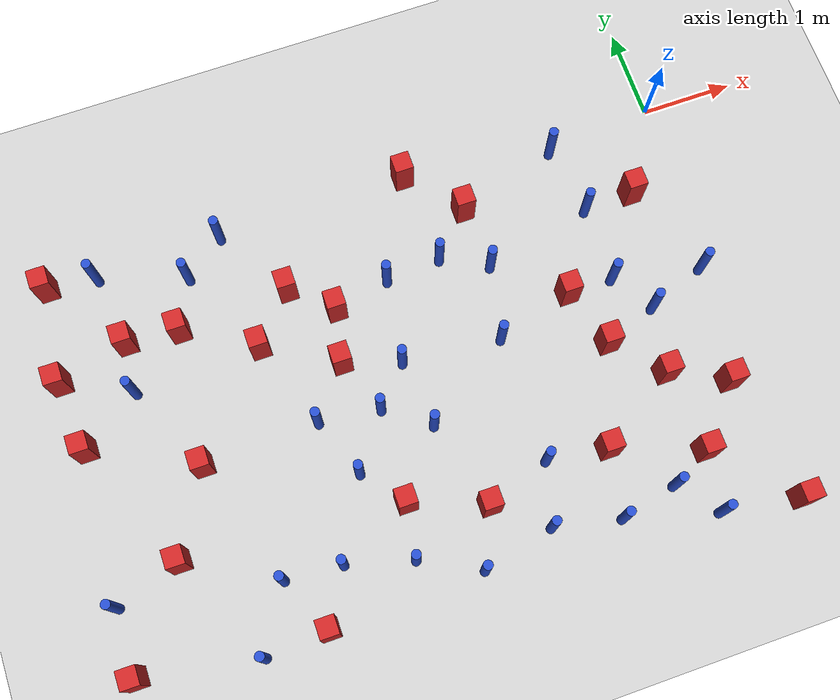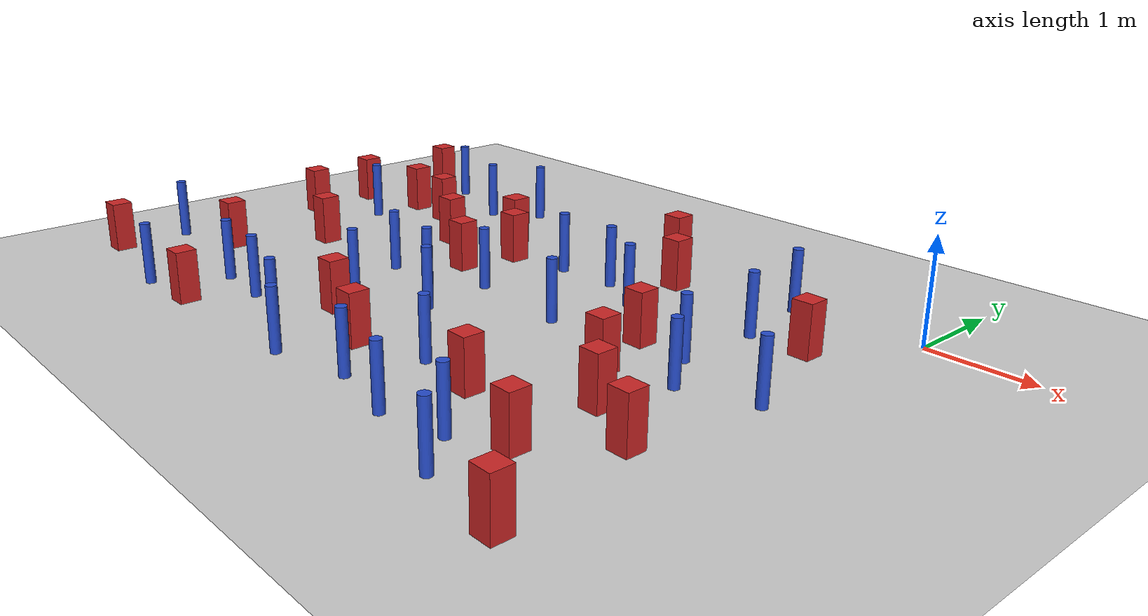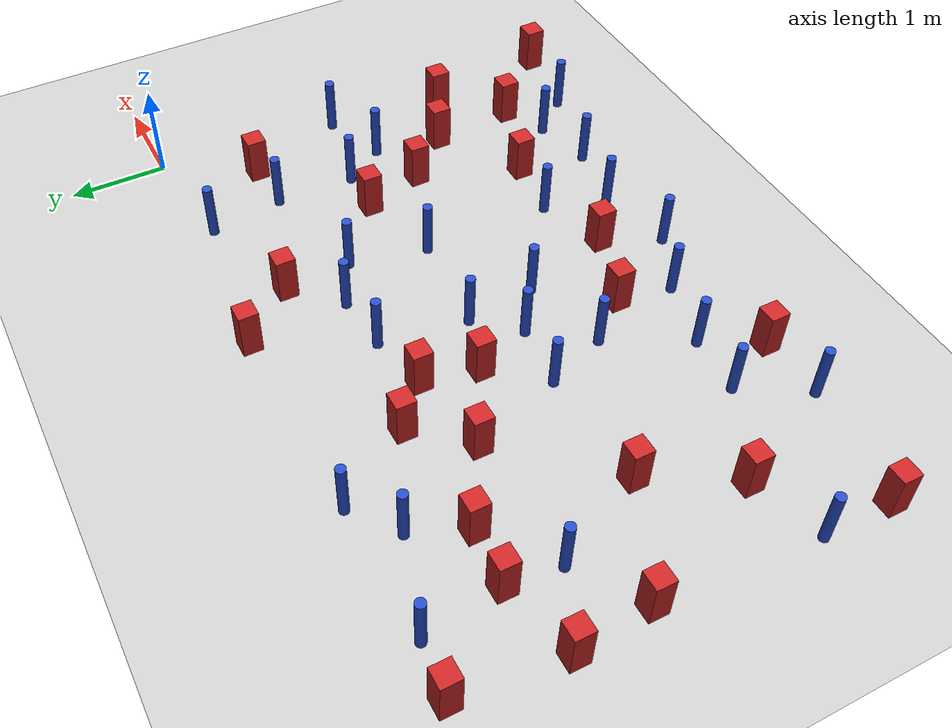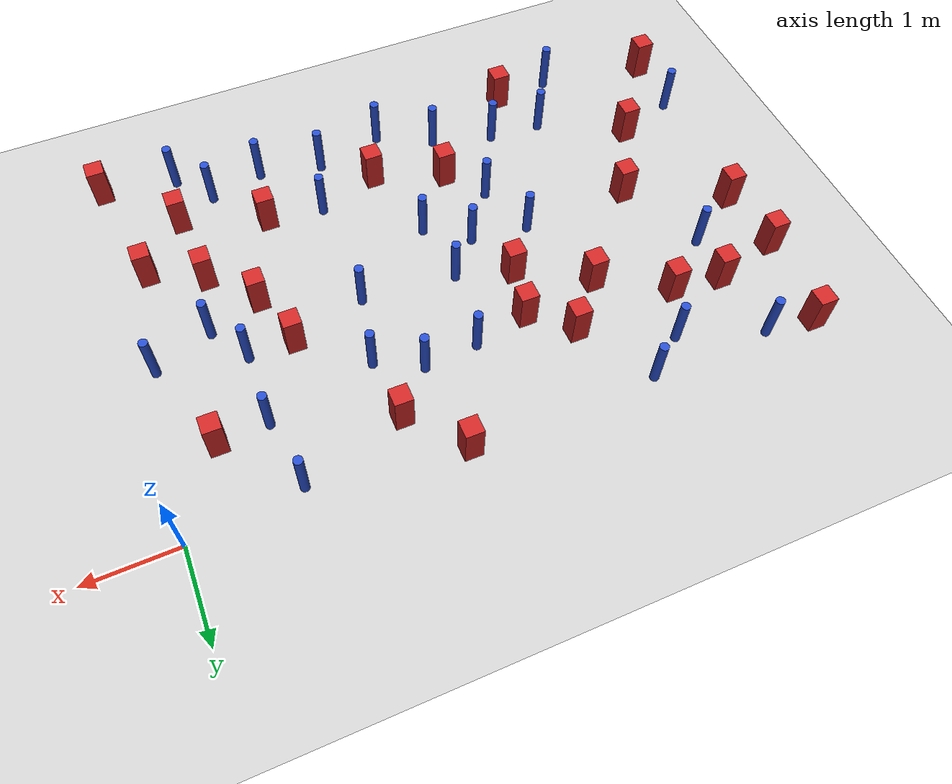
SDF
<sdf version="1.6">
 <world name="default">
  <model name="ground_plane">
   <static>1</static>
   <link name="link">
    <collision name="collision">
     <geometry><plane><normal>0 0 1</normal><size>100 100</size></plane></geometry>
     <surface><friction><ode><mu>100</mu><mu2>50</mu2></ode></friction></surface>
    </collision>
    <visual name="visual">
     <cast_shadows>0</cast_shadows>
     <geometry><plane><normal>0 0 1</normal><size>100 100</size></plane></geometry>
     <material>
      <ambient>1.0 1.0 1.0 1.0</ambient>
      <diffuse>0.8 0.8 0.8 1.0</diffuse>
      <specular>0.01 0.01 0.01 1.000000</specular>
     </material>
    </visual>
   </link>
  </model>
  <model name="square_post_obstacle0">
   <static>true</static>
   <pose>-2.84587844611 0.101750438623 8.22691968438e-08 7.2212513382e-06 -7.54495500217e-07 2.29674213826e-05</pose>
   <link name="link">
    <pose>0 0 0.25 0 -0 0</pose>
    <inertial>
     <mass>100</mass>
     <inertia>
      <ixx>0.166667</ixx>
      <ixy>0</ixy>
      <ixz>0</ixz>
      <iyy>0.166667</iyy>
      <iyz>0</iyz>
      <izz>0.166667</izz>
     </inertia>
    </inertial>
    <collision name="collision"><geometry><box><size>.2 .2 .5</size></box></geometry></collision>
    <visual name="visual">
     <geometry><box><size>.2 .2 .5</size></box></geometry>
     <material>
      <script><name>Gazebo/Red</name><uri>file://media/materials/scripts/gazebo.material</uri></script>
     </material>
    </visual>
   </link>
  </model>
  <model name="pole_obstacle5">
   <static>true</static>
   <pose>-2.66993275349 -4.00162867115 2.88873142074e-08 -9.90536690007e-09 4.60219948985e-07 -1.20965994963e-07</pose>
   <link name="link">
    <pose>0 0 0.3 0 -0 0</pose>
    <inertial>
     <mass>1</mass>
     <inertia><ixx>0.145833</ixx><ixy>0</ixy><ixz>0</ixz><iyy>0.145833</iyy><iyz>0</iyz><izz>0.125</izz></inertia>
    </inertial>
    <collision name="collision">
     <geometry><cylinder><radius>0.05</radius><length>.6</length></cylinder></geometry>
    </collision>
    <visual name="visual">
     <geometry><cylinder><radius>0.05</radius><length>.6</length></cylinder></geometry>
     <material>
      <script><name>Gazebo/Blue</name><uri>file://media/materials/scripts/gazebo.material</uri></script>
     </material>
    </visual>
   </link>
  </model>
  <model name="square_post_obstacle8">
   <static>true</static>
   <pose>-5.08097280859 -4.21850157625 8.22691968438e-08 7.2212513382e-06 -7.54495500217e-07 2.29674213826e-05</pose>
   <link name="link">
    <pose>0 0 0.25 0 -0 0</pose>
    <inertial>
     <mass>100</mass>
     <inertia>
      <ixx>0.166667</ixx>
      <ixy>0</ixy>
      <ixz>0</ixz>
      <iyy>0.166667</iyy>
      <iyz>0</iyz>
      <izz>0.166667</izz>
     </inertia>
    </inertial>
    <collision name="collision"><geometry><box><size>.2 .2 .5</size></box></geometry></collision>
    <visual name="visual">
     <geometry><box><size>.2 .2 .5</size></box></geometry>
     <material>
      <script><name>Gazebo/Red</name><uri>file://media/materials/scripts/gazebo.material</uri></script>
     </material>
    </visual>
   </link>
  </model>
  <model name="pole_obstacle7">
   <static>true</static>
   <pose>-3.89535260939 -2.29034658619 2.88873142074e-08 -9.90536690232e-09 4.6021994898e-07 -1.20965994968e-07</pose>
   <link name="link">
    <pose>0 0 0.3 0 -0 0</pose>
    <inertial>
     <mass>1</mass>
     <inertia><ixx>0.145833</ixx><ixy>0</ixy><ixz>0</ixz><iyy>0.145833</iyy><iyz>0</iyz><izz>0.125</izz></inertia>
    </inertial>
    <collision name="collision">
     <geometry><cylinder><radius>0.05</radius><length>.6</length></cylinder></geometry>
    </collision>
    <visual name="visual">
     <geometry><cylinder><radius>0.05</radius><length>.6</length></cylinder></geometry>
     <material>
      <script><name>Gazebo/Blue</name><uri>file://media/materials/scripts/gazebo.material</uri></script>
     </material>
    </visual>
   </link>
  </model>
  <model name="square_post_obstacle17">
   <static>true</static>
   <pose>-5.79297355049 -2.24923359172 8.22691968438e-08 7.2212513382e-06 -7.54495500217e-07 2.29674213826e-05</pose>
   <link name="link">
    <pose>0 0 0.25 0 -0 0</pose>
    <inertial>
     <mass>100</mass>
     <inertia>
      <ixx>0.166667</ixx>
      <ixy>0</ixy>
      <ixz>0</ixz>
      <iyy>0.166667</iyy>
      <iyz>0</iyz>
      <izz>0.166667</izz>
     </inertia>
    </inertial>
    <collision name="collision"><geometry><box><size>.2 .2 .5</size></box></geometry></collision>
    <visual name="visual">
     <geometry><box><size>.2 .2 .5</size></box></geometry>
     <material>
      <script><name>Gazebo/Red</name><uri>file://media/materials/scripts/gazebo.material</uri></script>
     </material>
    </visual>
   </link>
  </model>
  <model name="pole_obstacle10">
   <static>true</static>
   <pose>-1.00639207774 -4.41292333605 2.88873142074e-08 -9.90536689792e-09 4.6021994899e-07 -1.2096599496e-07</pose>
   <link name="link">
    <pose>0 0 0.3 0 -0 0</pose>
    <inertial>
     <mass>1</mass>
     <inertia><ixx>0.145833</ixx><ixy>0</ixy><ixz>0</ixz><iyy>0.145833</iyy><iyz>0</iyz><izz>0.125</izz></inertia>
    </inertial>
    <collision name="collision">
     <geometry><cylinder><radius>0.05</radius><length>.6</length></cylinder></geometry>
    </collision>
    <visual name="visual">
     <geometry><cylinder><radius>0.05</radius><length>.6</length></cylinder></geometry>
     <material>
      <script><name>Gazebo/Blue</name><uri>file://media/materials/scripts/gazebo.material</uri></script>
     </material>
    </visual>
   </link>
  </model>
  <model name="square_post_obstacle19">
   <static>true</static>
   <pose>-4.88050866906 -1.23946027263 8.22691968438e-08 7.2212513382e-06 -7.54495500217e-07 2.29674213826e-05</pose>
   <link name="link">
    <pose>0 0 0.25 0 -0 0</pose>
    <inertial>
     <mass>100</mass>
     <inertia>
      <ixx>0.166667</ixx>
      <ixy>0</ixy>
      <ixz>0</ixz>
      <iyy>0.166667</iyy>
      <iyz>0</iyz>
      <izz>0.166667</izz>
     </inertia>
    </inertial>
    <collision name="collision"><geometry><box><size>.2 .2 .5</size></box></geometry></collision>
    <visual name="visual">
     <geometry><box><size>.2 .2 .5</size></box></geometry>
     <material>
      <script><name>Gazebo/Red</name><uri>file://media/materials/scripts/gazebo.material</uri></script>
     </material>
    </visual>
   </link>
  </model>
  <model name="square_post_obstacle24">
   <static>true</static>
   <pose>-3.17812976297 -3.57739050062 8.22691968438e-08 7.2212513382e-06 -7.54495500217e-07 2.29674213826e-05</pose>
   <link name="link">
    <pose>0 0 0.25 0 -0 0</pose>
    <inertial>
     <mass>100</mass>
     <inertia>
      <ixx>0.166667</ixx>
      <ixy>0</ixy>
      <ixz>0</ixz>
      <iyy>0.166667</iyy>
      <iyz>0</iyz>
      <izz>0.166667</izz>
     </inertia>
    </inertial>
    <collision name="collision"><geometry><box><size>.2 .2 .5</size></box></geometry></collision>
    <visual name="visual">
     <geometry><box><size>.2 .2 .5</size></box></geometry>
     <material>
      <script><name>Gazebo/Red</name><uri>file://media/materials/scripts/gazebo.material</uri></script>
     </material>
    </visual>
   </link>
  </model>
  <model name="pole_obstacle19">
   <static>true</static>
   <pose>-6.98913396444 -3.3410348965 2.88873142074e-08 -9.90536690245e-09 4.6021994898e-07 -1.20965994966e-07</pose>
   <link name="link">
    <pose>0 0 0.3 0 -0 0</pose>
    <inertial>
     <mass>1</mass>
     <inertia><ixx>0.145833</ixx><ixy>0</ixy><ixz>0</ixz><iyy>0.145833</iyy><iyz>0</iyz><izz>0.125</izz></inertia>
    </inertial>
    <collision name="collision">
     <geometry><cylinder><radius>0.05</radius><length>.6</length></cylinder></geometry>
    </collision>
    <visual name="visual">
     <geometry><cylinder><radius>0.05</radius><length>.6</length></cylinder></geometry>
     <material>
      <script><name>Gazebo/Blue</name><uri>file://media/materials/scripts/gazebo.material</uri></script>
     </material>
    </visual>
   </link>
  </model>
  <model name="pole_obstacle21">
   <static>true</static>
   <pose>-5.37258440158 -0.266181176572 2.88873142074e-08 -9.9053668927e-09 4.60219949003e-07 -1.20965994954e-07</pose>
   <link name="link">
    <pose>0 0 0.3 0 -0 0</pose>
    <inertial>
     <mass>1</mass>
     <inertia><ixx>0.145833</ixx><ixy>0</ixy><ixz>0</ixz><iyy>0.145833</iyy><iyz>0</iyz><izz>0.125</izz></inertia>
    </inertial>
    <collision name="collision">
     <geometry><cylinder><radius>0.05</radius><length>.6</length></cylinder></geometry>
    </collision>
    <visual name="visual">
     <geometry><cylinder><radius>0.05</radius><length>.6</length></cylinder></geometry>
     <material>
      <script><name>Gazebo/Blue</name><uri>file://media/materials/scripts/gazebo.material</uri></script>
     </material>
    </visual>
   </link>
  </model>
  <model name="pole_obstacle29">
   <static>true</static>
   <pose>-3.38603073049 -0.976342570758 2.88873142074e-08 -9.90536687665e-09 4.60219949039e-07 -1.20965994942e-07</pose>
   <link name="link">
    <pose>0 0 0.3 0 -0 0</pose>
    <inertial>
     <mass>1</mass>
     <inertia><ixx>0.145833</ixx><ixy>0</ixy><ixz>0</ixz><iyy>0.145833</iyy><iyz>0</iyz><izz>0.125</izz></inertia>
    </inertial>
    <collision name="collision">
     <geometry><cylinder><radius>0.05</radius><length>.6</length></cylinder></geometry>
    </collision>
    <visual name="visual">
     <geometry><cylinder><radius>0.05</radius><length>.6</length></cylinder></geometry>
     <material>
      <script><name>Gazebo/Blue</name><uri>file://media/materials/scripts/gazebo.material</uri></script>
     </material>
    </visual>
   </link>
  </model>
  <model name="pole_obstacle34">
   <static>true</static>
   <pose>-4.05886031066 -3.86255129519 2.88873142074e-08 -9.90536690245e-09 4.6021994898e-07 -1.20965994966e-07</pose>
   <link name="link">
    <pose>0 0 0.3 0 -0 0</pose>
    <inertial>
     <mass>1</mass>
     <inertia><ixx>0.145833</ixx><ixy>0</ixy><ixz>0</ixz><iyy>0.145833</iyy><iyz>0</iyz><izz>0.125</izz></inertia>
    </inertial>
    <collision name="collision">
     <geometry><cylinder><radius>0.05</radius><length>.6</length></cylinder></geometry>
    </collision>
    <visual name="visual">
     <geometry><cylinder><radius>0.05</radius><length>.6</length></cylinder></geometry>
     <material>
      <script><name>Gazebo/Blue</name><uri>file://media/materials/scripts/gazebo.material</uri></script>
     </material>
    </visual>
   </link>
  </model>
  <model name="square_post_obstacle38">
   <static>true</static>
   <pose>-5.62168079201 -0.792575105588 8.22691968438e-08 7.2212513382e-06 -7.54495500217e-07 2.29674213826e-05</pose>
   <link name="link">
    <pose>0 0 0.25 0 -0 0</pose>
    <inertial>
     <mass>100</mass>
     <inertia>
      <ixx>0.166667</ixx>
      <ixy>0</ixy>
      <ixz>0</ixz>
      <iyy>0.166667</iyy>
      <iyz>0</iyz>
      <izz>0.166667</izz>
     </inertia>
    </inertial>
    <collision name="collision"><geometry><box><size>.2 .2 .5</size></box></geometry></collision>
    <visual name="visual">
     <geometry><box><size>.2 .2 .5</size></box></geometry>
     <material>
      <script><name>Gazebo/Red</name><uri>file://media/materials/scripts/gazebo.material</uri></script>
     </material>
    </visual>
   </link>
  </model>
  <model name="pole_obstacle42">
   <static>true</static>
   <pose>-2.46496689117 -1.98006889055 2.88873142074e-08 -9.90536689589e-09 4.60219948995e-07 -1.20965994957e-07</pose>
   <link name="link">
    <pose>0 0 0.3 0 -0 0</pose>
    <inertial>
     <mass>1</mass>
     <inertia><ixx>0.145833</ixx><ixy>0</ixy><ixz>0</ixz><iyy>0.145833</iyy><iyz>0</iyz><izz>0.125</izz></inertia>
    </inertial>
    <collision name="collision">
     <geometry><cylinder><radius>0.05</radius><length>.6</length></cylinder></geometry>
    </collision>
    <visual name="visual">
     <geometry><cylinder><radius>0.05</radius><length>.6</length></cylinder></geometry>
     <material>
      <script><name>Gazebo/Blue</name><uri>file://media/materials/scripts/gazebo.material</uri></script>
     </material>
    </visual>
   </link>
  </model>
  <model name="square_post_obstacle51">
   <static>true</static>
   <pose>-6.99228711313 -4.04863941483 8.22691968438e-08 7.22125133819e-06 -7.54495500217e-07 2.29674213826e-05</pose>
   <link name="link">
    <pose>0 0 0.25 0 -0 0</pose>
    <inertial>
     <mass>100</mass>
     <inertia>
      <ixx>0.166667</ixx>
      <ixy>0</ixy>
      <ixz>0</ixz>
      <iyy>0.166667</iyy>
      <iyz>0</iyz>
      <izz>0.166667</izz>
     </inertia>
    </inertial>
    <collision name="collision"><geometry><box><size>.2 .2 .5</size></box></geometry></collision>
    <visual name="visual">
     <geometry><box><size>.2 .2 .5</size></box></geometry>
     <material>
      <script><name>Gazebo/Red</name><uri>file://media/materials/scripts/gazebo.material</uri></script>
     </material>
    </visual>
   </link>
  </model>
  <model name="square_post_obstacle55">
   <static>true</static>
   <pose>-2.34799162989 -0.472409495183 8.22691968438e-08 7.2212513382e-06 -7.54495500217e-07 2.29674213826e-05</pose>
   <link name="link">
    <pose>0 0 0.25 0 -0 0</pose>
    <inertial>
     <mass>100</mass>
     <inertia>
      <ixx>0.166667</ixx>
      <ixy>0</ixy>
      <ixz>0</ixz>
      <iyy>0.166667</iyy>
      <iyz>0</iyz>
      <izz>0.166667</izz>
     </inertia>
    </inertial>
    <collision name="collision"><geometry><box><size>.2 .2 .5</size></box></geometry></collision>
    <visual name="visual">
     <geometry><box><size>.2 .2 .5</size></box></geometry>
     <material>
      <script><name>Gazebo/Red</name><uri>file://media/materials/scripts/gazebo.material</uri></script>
     </material>
    </visual>
   </link>
  </model>
  <model name="pole_obstacle54">
   <static>true</static>
   <pose>-1.1235914089 -1.74053471582 2.88873142074e-08 -9.90536689672e-09 4.60219948993e-07 -1.20965994959e-07</pose>
   <link name="link">
    <pose>0 0 0.3 0 -0 0</pose>
    <inertial>
     <mass>1</mass>
     <inertia><ixx>0.145833</ixx><ixy>0</ixy><ixz>0</ixz><iyy>0.145833</iyy><iyz>0</iyz><izz>0.125</izz></inertia>
    </inertial>
    <collision name="collision">
     <geometry><cylinder><radius>0.05</radius><length>.6</length></cylinder></geometry>
    </collision>
    <visual name="visual">
     <geometry><cylinder><radius>0.05</radius><length>.6</length></cylinder></geometry>
     <material>
      <script><name>Gazebo/Blue</name><uri>file://media/materials/scripts/gazebo.material</uri></script>
     </material>
    </visual>
   </link>
  </model>
  <model name="square_post_obstacle58">
   <static>true</static>
   <pose>-1.83741293282 -3.42551823538 8.22691968438e-08 7.2212513382e-06 -7.54495500217e-07 2.29674213826e-05</pose>
   <link name="link">
    <pose>0 0 0.25 0 -0 0</pose>
    <inertial>
     <mass>100</mass>
     <inertia>
      <ixx>0.166667</ixx>
      <ixy>0</ixy>
      <ixz>0</ixz>
      <iyy>0.166667</iyy>
      <iyz>0</iyz>
      <izz>0.166667</izz>
     </inertia>
    </inertial>
    <collision name="collision"><geometry><box><size>.2 .2 .5</size></box></geometry></collision>
    <visual name="visual">
     <geometry><box><size>.2 .2 .5</size></box></geometry>
     <material>
      <script><name>Gazebo/Red</name><uri>file://media/materials/scripts/gazebo.material</uri></script>
     </material>
    </visual>
   </link>
  </model>
  <model name="square_post_obstacle65">
   <static>true</static>
   <pose>-4.42170971 -0.727729598362 8.22691968438e-08 7.2212513382e-06 -7.54495500217e-07 2.29674213826e-05</pose>
   <link name="link">
    <pose>0 0 0.25 0 -0 0</pose>
    <inertial>
     <mass>100</mass>
     <inertia>
      <ixx>0.166667</ixx>
      <ixy>0</ixy>
      <ixz>0</ixz>
      <iyy>0.166667</iyy>
      <iyz>0</iyz>
      <izz>0.166667</izz>
     </inertia>
    </inertial>
    <collision name="collision"><geometry><box><size>.2 .2 .5</size></box></geometry></collision>
    <visual name="visual">
     <geometry><box><size>.2 .2 .5</size></box></geometry>
     <material>
      <script><name>Gazebo/Red</name><uri>file://media/materials/scripts/gazebo.material</uri></script>
     </material>
    </visual>
   </link>
  </model>
  <model name="pole_obstacle86">
   <static>true</static>
   <pose>-6.24264509138 -1.29145536053 2.88873142074e-08 -9.90536689445e-09 4.60219948999e-07 -1.20965994956e-07</pose>
   <link name="link">
    <pose>0 0 0.3 0 -0 0</pose>
    <inertial>
     <mass>1</mass>
     <inertia><ixx>0.145833</ixx><ixy>0</ixy><ixz>0</ixz><iyy>0.145833</iyy><iyz>0</iyz><izz>0.125</izz></inertia>
    </inertial>
    <collision name="collision">
     <geometry><cylinder><radius>0.05</radius><length>.6</length></cylinder></geometry>
    </collision>
    <visual name="visual">
     <geometry><cylinder><radius>0.05</radius><length>.6</length></cylinder></geometry>
     <material>
      <script><name>Gazebo/Blue</name><uri>file://media/materials/scripts/gazebo.material</uri></script>
     </material>
    </visual>
   </link>
  </model>
  <model name="pole_obstacle88">
   <static>true</static>
   <pose>-3.43593170437 -2.62619215571 2.88873142074e-08 -9.90536690232e-09 4.6021994898e-07 -1.20965994968e-07</pose>
   <link name="link">
    <pose>0 0 0.3 0 -0 0</pose>
    <inertial>
     <mass>1</mass>
     <inertia><ixx>0.145833</ixx><ixy>0</ixy><ixz>0</ixz><iyy>0.145833</iyy><iyz>0</iyz><izz>0.125</izz></inertia>
    </inertial>
    <collision name="collision">
     <geometry><cylinder><radius>0.05</radius><length>.6</length></cylinder></geometry>
    </collision>
    <visual name="visual">
     <geometry><cylinder><radius>0.05</radius><length>.6</length></cylinder></geometry>
     <material>
      <script><name>Gazebo/Blue</name><uri>file://media/materials/scripts/gazebo.material</uri></script>
     </material>
    </visual>
   </link>
  </model>
  <model name="pole_obstacle95">
   <static>true</static>
   <pose>-6.2966273753 0.0435318729387 2.88873142074e-08 -9.90536689361e-09 4.60219949001e-07 -1.20965994955e-07</pose>
   <link name="link">
    <pose>0 0 0.3 0 -0 0</pose>
    <inertial>
     <mass>1</mass>
     <inertia><ixx>0.145833</ixx><ixy>0</ixy><ixz>0</ixz><iyy>0.145833</iyy><iyz>0</iyz><izz>0.125</izz></inertia>
    </inertial>
    <collision name="collision">
     <geometry><cylinder><radius>0.05</radius><length>.6</length></cylinder></geometry>
    </collision>
    <visual name="visual">
     <geometry><cylinder><radius>0.05</radius><length>.6</length></cylinder></geometry>
     <material>
      <script><name>Gazebo/Blue</name><uri>file://media/materials/scripts/gazebo.material</uri></script>
     </material>
    </visual>
   </link>
  </model>
  <model name="square_post_obstacle86">
   <static>true</static>
   <pose>-6.94916123792 -0.940429647604 8.22691968438e-08 7.22125133819e-06 -7.54495500217e-07 2.29674213826e-05</pose>
   <link name="link">
    <pose>0 0 0.25 0 -0 0</pose>
    <inertial>
     <mass>100</mass>
     <inertia>
      <ixx>0.166667</ixx>
      <ixy>0</ixy>
      <ixz>0</ixz>
      <iyy>0.166667</iyy>
      <iyz>0</iyz>
      <izz>0.166667</izz>
     </inertia>
    </inertial>
    <collision name="collision"><geometry><box><size>.2 .2 .5</size></box></geometry></collision>
    <visual name="visual">
     <geometry><box><size>.2 .2 .5</size></box></geometry>
     <material>
      <script><name>Gazebo/Red</name><uri>file://media/materials/scripts/gazebo.material</uri></script>
     </material>
    </visual>
   </link>
  </model>
  <model name="square_post_obstacle91">
   <static>true</static>
   <pose>-0.38873989778 -3.1671405557 8.22691968438e-08 7.2212513382e-06 -7.54495500217e-07 2.29674213826e-05</pose>
   <link name="link">
    <pose>0 0 0.25 0 -0 0</pose>
    <inertial>
     <mass>100</mass>
     <inertia>
      <ixx>0.166667</ixx>
      <ixy>0</ixy>
      <ixz>0</ixz>
      <iyy>0.166667</iyy>
      <iyz>0</iyz>
      <izz>0.166667</izz>
     </inertia>
    </inertial>
    <collision name="collision"><geometry><box><size>.2 .2 .5</size></box></geometry></collision>
    <visual name="visual">
     <geometry><box><size>.2 .2 .5</size></box></geometry>
     <material>
      <script><name>Gazebo/Red</name><uri>file://media/materials/scripts/gazebo.material</uri></script>
     </material>
    </visual>
   </link>
  </model>
  <model name="pole_obstacle107">
   <static>true</static>
   <pose>-1.2170728881 -0.140132219002 2.88873142074e-08 -9.90536689982e-09 4.60219948986e-07 -1.20965994963e-07</pose>
   <link name="link">
    <pose>0 0 0.3 0 -0 0</pose>
    <inertial>
     <mass>1</mass>
     <inertia><ixx>0.145833</ixx><ixy>0</ixy><ixz>0</ixz><iyy>0.145833</iyy><iyz>0</iyz><izz>0.125</izz></inertia>
    </inertial>
    <collision name="collision">
     <geometry><cylinder><radius>0.05</radius><length>.6</length></cylinder></geometry>
    </collision>
    <visual name="visual">
     <geometry><cylinder><radius>0.05</radius><length>.6</length></cylinder></geometry>
     <material>
      <script><name>Gazebo/Blue</name><uri>file://media/materials/scripts/gazebo.material</uri></script>
     </material>
    </visual>
   </link>
  </model>
  <model name="pole_obstacle110">
   <static>true</static>
   <pose>-0.185197007833 -1.93534676744 2.88873142074e-08 -9.90536689666e-09 4.60219948993e-07 -1.20965994958e-07</pose>
   <link name="link">
    <pose>0 0 0.3 0 -0 0</pose>
    <inertial>
     <mass>1</mass>
     <inertia><ixx>0.145833</ixx><ixy>0</ixy><ixz>0</ixz><iyy>0.145833</iyy><iyz>0</iyz><izz>0.125</izz></inertia>
    </inertial>
    <collision name="collision">
     <geometry><cylinder><radius>0.05</radius><length>.6</length></cylinder></geometry>
    </collision>
    <visual name="visual">
     <geometry><cylinder><radius>0.05</radius><length>.6</length></cylinder></geometry>
     <material>
      <script><name>Gazebo/Blue</name><uri>file://media/materials/scripts/gazebo.material</uri></script>
     </material>
    </visual>
   </link>
  </model>
  <model name="pole_obstacle115">
   <static>true</static>
   <pose>-2.47929947515 -3.34834220231 2.88873142074e-08 -9.90536690232e-09 4.6021994898e-07 -1.20965994968e-07</pose>
   <link name="link">
    <pose>0 0 0.3 0 -0 0</pose>
    <inertial>
     <mass>1</mass>
     <inertia><ixx>0.145833</ixx><ixy>0</ixy><ixz>0</ixz><iyy>0.145833</iyy><iyz>0</iyz><izz>0.125</izz></inertia>
    </inertial>
    <collision name="collision">
     <geometry><cylinder><radius>0.05</radius><length>.6</length></cylinder></geometry>
    </collision>
    <visual name="visual">
     <geometry><cylinder><radius>0.05</radius><length>.6</length></cylinder></geometry>
     <material>
      <script><name>Gazebo/Blue</name><uri>file://media/materials/scripts/gazebo.material</uri></script>
     </material>
    </visual>
   </link>
  </model>
  <model name="pole_obstacle116">
   <static>true</static>
   <pose>-4.92797380079 0.072935126343 2.88873142074e-08 -9.90536689222e-09 4.60219949004e-07 -1.20965994951e-07</pose>
   <link name="link">
    <pose>0 0 0.3 0 -0 0</pose>
    <inertial>
     <mass>1</mass>
     <inertia><ixx>0.145833</ixx><ixy>0</ixy><ixz>0</ixz><iyy>0.145833</iyy><iyz>0</iyz><izz>0.125</izz></inertia>
    </inertial>
    <collision name="collision">
     <geometry><cylinder><radius>0.05</radius><length>.6</length></cylinder></geometry>
    </collision>
    <visual name="visual">
     <geometry><cylinder><radius>0.05</radius><length>.6</length></cylinder></geometry>
     <material>
      <script><name>Gazebo/Blue</name><uri>file://media/materials/scripts/gazebo.material</uri></script>
     </material>
    </visual>
   </link>
  </model>
  <model name="pole_obstacle118">
   <static>true</static>
   <pose>-5.75203755778 -4.27469598799 2.88873142074e-08 -9.90536690842e-09 4.60219948965e-07 -1.20965994976e-07</pose>
   <link name="link">
    <pose>0 0 0.3 0 -0 0</pose>
    <inertial>
     <mass>1</mass>
     <inertia><ixx>0.145833</ixx><ixy>0</ixy><ixz>0</ixz><iyy>0.145833</iyy><iyz>0</iyz><izz>0.125</izz></inertia>
    </inertial>
    <collision name="collision">
     <geometry><cylinder><radius>0.05</radius><length>.6</length></cylinder></geometry>
    </collision>
    <visual name="visual">
     <geometry><cylinder><radius>0.05</radius><length>.6</length></cylinder></geometry>
     <material>
      <script><name>Gazebo/Blue</name><uri>file://media/materials/scripts/gazebo.material</uri></script>
     </material>
    </visual>
   </link>
  </model>
  <model name="square_post_obstacle105">
   <static>true</static>
   <pose>-1.42601222404 -2.37801932961 8.22691968438e-08 7.2212513382e-06 -7.54495500217e-07 2.29674213826e-05</pose>
   <link name="link">
    <pose>0 0 0.25 0 -0 0</pose>
    <inertial>
     <mass>100</mass>
     <inertia>
      <ixx>0.166667</ixx>
      <ixy>0</ixy>
      <ixz>0</ixz>
      <iyy>0.166667</iyy>
      <iyz>0</iyz>
      <izz>0.166667</izz>
     </inertia>
    </inertial>
    <collision name="collision"><geometry><box><size>.2 .2 .5</size></box></geometry></collision>
    <visual name="visual">
     <geometry><box><size>.2 .2 .5</size></box></geometry>
     <material>
      <script><name>Gazebo/Red</name><uri>file://media/materials/scripts/gazebo.material</uri></script>
     </material>
    </visual>
   </link>
  </model>
  <model name="square_post_obstacle108">
   <static>true</static>
   <pose>-3.99846314801 -1.10713414687 8.22691968438e-08 7.2212513382e-06 -7.54495500217e-07 2.29674213826e-05</pose>
   <link name="link">
    <pose>0 0 0.25 0 -0 0</pose>
    <inertial>
     <mass>100</mass>
     <inertia>
      <ixx>0.166667</ixx>
      <ixy>0</ixy>
      <ixz>0</ixz>
      <iyy>0.166667</iyy>
      <iyz>0</iyz>
      <izz>0.166667</izz>
     </inertia>
    </inertial>
    <collision name="collision"><geometry><box><size>.2 .2 .5</size></box></geometry></collision>
    <visual name="visual">
     <geometry><box><size>.2 .2 .5</size></box></geometry>
     <material>
      <script><name>Gazebo/Red</name><uri>file://media/materials/scripts/gazebo.material</uri></script>
     </material>
    </visual>
   </link>
  </model>
  <model name="pole_obstacle125">
   <static>true</static>
   <pose>-1.10225082935 -0.913636569275 2.88873142074e-08 -9.90536689692e-09 4.60219948993e-07 -1.20965994958e-07</pose>
   <link name="link">
    <pose>0 0 0.3 0 -0 0</pose>
    <inertial>
     <mass>1</mass>
     <inertia><ixx>0.145833</ixx><ixy>0</ixy><ixz>0</ixz><iyy>0.145833</iyy><iyz>0</iyz><izz>0.125</izz></inertia>
    </inertial>
    <collision name="collision">
     <geometry><cylinder><radius>0.05</radius><length>.6</length></cylinder></geometry>
    </collision>
    <visual name="visual">
     <geometry><cylinder><radius>0.05</radius><length>.6</length></cylinder></geometry>
     <material>
      <script><name>Gazebo/Blue</name><uri>file://media/materials/scripts/gazebo.material</uri></script>
     </material>
    </visual>
   </link>
  </model>
  <model name="pole_obstacle128">
   <static>true</static>
   <pose>-2.2928692425 -1.18259276771 2.88873142074e-08 -9.90536689395e-09 4.60219949e-07 -1.20965994953e-07</pose>
   <link name="link">
    <pose>0 0 0.3 0 -0 0</pose>
    <inertial>
     <mass>1</mass>
     <inertia><ixx>0.145833</ixx><ixy>0</ixy><ixz>0</ixz><iyy>0.145833</iyy><iyz>0</iyz><izz>0.125</izz></inertia>
    </inertial>
    <collision name="collision">
     <geometry><cylinder><radius>0.05</radius><length>.6</length></cylinder></geometry>
    </collision>
    <visual name="visual">
     <geometry><cylinder><radius>0.05</radius><length>.6</length></cylinder></geometry>
     <material>
      <script><name>Gazebo/Blue</name><uri>file://media/materials/scripts/gazebo.material</uri></script>
     </material>
    </visual>
   </link>
  </model>
  <model name="pole_obstacle129">
   <static>true</static>
   <pose>-4.31286075977 -2.85340501641 2.88873142074e-08 -9.90536690245e-09 4.6021994898e-07 -1.20965994966e-07</pose>
   <link name="link">
    <pose>0 0 0.3 0 -0 0</pose>
    <inertial>
     <mass>1</mass>
     <inertia><ixx>0.145833</ixx><ixy>0</ixy><ixz>0</ixz><iyy>0.145833</iyy><iyz>0</iyz><izz>0.125</izz></inertia>
    </inertial>
    <collision name="collision">
     <geometry><cylinder><radius>0.05</radius><length>.6</length></cylinder></geometry>
    </collision>
    <visual name="visual">
     <geometry><cylinder><radius>0.05</radius><length>.6</length></cylinder></geometry>
     <material>
      <script><name>Gazebo/Blue</name><uri>file://media/materials/scripts/gazebo.material</uri></script>
     </material>
    </visual>
   </link>
  </model>
  <model name="pole_obstacle132">
   <static>true</static>
   <pose>-2.78127785963 -0.928568165394 2.88873142074e-08 -9.90536689285e-09 4.60219949002e-07 -1.20965994953e-07</pose>
   <link name="link">
    <pose>0 0 0.3 0 -0 0</pose>
    <inertial>
     <mass>1</mass>
     <inertia><ixx>0.145833</ixx><ixy>0</ixy><ixz>0</ixz><iyy>0.145833</iyy><iyz>0</iyz><izz>0.125</izz></inertia>
    </inertial>
    <collision name="collision">
     <geometry><cylinder><radius>0.05</radius><length>.6</length></cylinder></geometry>
    </collision>
    <visual name="visual">
     <geometry><cylinder><radius>0.05</radius><length>.6</length></cylinder></geometry>
     <material>
      <script><name>Gazebo/Blue</name><uri>file://media/materials/scripts/gazebo.material</uri></script>
     </material>
    </visual>
   </link>
  </model>
  <model name="square_post_obstacle117">
   <static>true</static>
   <pose>-0.56029920951 -0.883520880099 8.22691968438e-08 7.2212513382e-06 -7.54495500217e-07 2.29674213826e-05</pose>
   <link name="link">
    <pose>0 0 0.25 0 -0 0</pose>
    <inertial>
     <mass>100</mass>
     <inertia>
      <ixx>0.166667</ixx>
      <ixy>0</ixy>
      <ixz>0</ixz>
      <iyy>0.166667</iyy>
      <iyz>0</iyz>
      <izz>0.166667</izz>
     </inertia>
    </inertial>
    <collision name="collision"><geometry><box><size>.2 .2 .5</size></box></geometry></collision>
    <visual name="visual">
     <geometry><box><size>.2 .2 .5</size></box></geometry>
     <material>
      <script><name>Gazebo/Red</name><uri>file://media/materials/scripts/gazebo.material</uri></script>
     </material>
    </visual>
   </link>
  </model>
  <model name="square_post_obstacle128">
   <static>true</static>
   <pose>-1.6250219737 -1.73338148764 8.22691968438e-08 7.2212513382e-06 -7.54495500217e-07 2.29674213826e-05</pose>
   <link name="link">
    <pose>0 0 0.25 0 -0 0</pose>
    <inertial>
     <mass>100</mass>
     <inertia>
      <ixx>0.166667</ixx>
      <ixy>0</ixy>
      <ixz>0</ixz>
      <iyy>0.166667</iyy>
      <iyz>0</iyz>
      <izz>0.166667</izz>
     </inertia>
    </inertial>
    <collision name="collision"><geometry><box><size>.2 .2 .5</size></box></geometry></collision>
    <visual name="visual">
     <geometry><box><size>.2 .2 .5</size></box></geometry>
     <material>
      <script><name>Gazebo/Red</name><uri>file://media/materials/scripts/gazebo.material</uri></script>
     </material>
    </visual>
   </link>
  </model>
  <model name="pole_obstacle142">
   <static>true</static>
   <pose>-5.36190583948 -3.62347634655 2.88873142074e-08 -9.90536690245e-09 4.6021994898e-07 -1.20965994966e-07</pose>
   <link name="link">
    <pose>0 0 0.3 0 -0 0</pose>
    <inertial>
     <mass>1</mass>
     <inertia><ixx>0.145833</ixx><ixy>0</ixy><ixz>0</ixz><iyy>0.145833</iyy><iyz>0</iyz><izz>0.125</izz></inertia>
    </inertial>
    <collision name="collision">
     <geometry><cylinder><radius>0.05</radius><length>.6</length></cylinder></geometry>
    </collision>
    <visual name="visual">
     <geometry><cylinder><radius>0.05</radius><length>.6</length></cylinder></geometry>
     <material>
      <script><name>Gazebo/Blue</name><uri>file://media/materials/scripts/gazebo.material</uri></script>
     </material>
    </visual>
   </link>
  </model>
  <model name="square_post_obstacle130">
   <static>true</static>
   <pose>-6.28279761258 -3.10147696802 8.22691968438e-08 7.2212513382e-06 -7.54495500217e-07 2.29674213826e-05</pose>
   <link name="link">
    <pose>0 0 0.25 0 -0 0</pose>
    <inertial>
     <mass>100</mass>
     <inertia>
      <ixx>0.166667</ixx>
      <ixy>0</ixy>
      <ixz>0</ixz>
      <iyy>0.166667</iyy>
      <iyz>0</iyz>
      <izz>0.166667</izz>
     </inertia>
    </inertial>
    <collision name="collision"><geometry><box><size>.2 .2 .5</size></box></geometry></collision>
    <visual name="visual">
     <geometry><box><size>.2 .2 .5</size></box></geometry>
     <material>
      <script><name>Gazebo/Red</name><uri>file://media/materials/scripts/gazebo.material</uri></script>
     </material>
    </visual>
   </link>
  </model>
  <model name="square_post_obstacle144">
   <static>true</static>
   <pose>-3.96570638691 -3.27871944012 8.22691968438e-08 7.2212513382e-06 -7.54495500217e-07 2.29674213826e-05</pose>
   <link name="link">
    <pose>0 0 0.25 0 -0 0</pose>
    <inertial>
     <mass>100</mass>
     <inertia>
      <ixx>0.166667</ixx>
      <ixy>0</ixy>
      <ixz>0</ixz>
      <iyy>0.166667</iyy>
      <iyz>0</iyz>
      <izz>0.166667</izz>
     </inertia>
    </inertial>
    <collision name="collision"><geometry><box><size>.2 .2 .5</size></box></geometry></collision>
    <visual name="visual">
     <geometry><box><size>.2 .2 .5</size></box></geometry>
     <material>
      <script><name>Gazebo/Red</name><uri>file://media/materials/scripts/gazebo.material</uri></script>
     </material>
    </visual>
   </link>
  </model>
  <model name="pole_obstacle156">
   <static>true</static>
   <pose>-1.34532325061 -4.00892136892 2.88873142074e-08 -9.90536689874e-09 4.60219948988e-07 -1.20965994961e-07</pose>
   <link name="link">
    <pose>0 0 0.3 0 -0 0</pose>
    <inertial>
     <mass>1</mass>
     <inertia><ixx>0.145833</ixx><ixy>0</ixy><ixz>0</ixz><iyy>0.145833</iyy><iyz>0</iyz><izz>0.125</izz></inertia>
    </inertial>
    <collision name="collision">
     <geometry><cylinder><radius>0.05</radius><length>.6</length></cylinder></geometry>
    </collision>
    <visual name="visual">
     <geometry><cylinder><radius>0.05</radius><length>.6</length></cylinder></geometry>
     <material>
      <script><name>Gazebo/Blue</name><uri>file://media/materials/scripts/gazebo.material</uri></script>
     </material>
    </visual>
   </link>
  </model>
  <model name="square_post_obstacle151">
   <static>true</static>
   <pose>-0.976225812028 -2.87273972552 8.22691968438e-08 7.2212513382e-06 -7.54495500217e-07 2.29674213826e-05</pose>
   <link name="link">
    <pose>0 0 0.25 0 -0 0</pose>
    <inertial>
     <mass>100</mass>
     <inertia>
      <ixx>0.166667</ixx>
      <ixy>0</ixy>
      <ixz>0</ixz>
      <iyy>0.166667</iyy>
      <iyz>0</iyz>
      <izz>0.166667</izz>
     </inertia>
    </inertial>
    <collision name="collision"><geometry><box><size>.2 .2 .5</size></box></geometry></collision>
    <visual name="visual">
     <geometry><box><size>.2 .2 .5</size></box></geometry>
     <material>
      <script><name>Gazebo/Red</name><uri>file://media/materials/scripts/gazebo.material</uri></script>
     </material>
    </visual>
   </link>
  </model>
  <model name="pole_obstacle161">
   <static>true</static>
   <pose>-4.75372788259 -3.67067948152 2.88873142074e-08 -9.90536690245e-09 4.6021994898e-07 -1.20965994966e-07</pose>
   <link name="link">
    <pose>0 0 0.3 0 -0 0</pose>
    <inertial>
     <mass>1</mass>
     <inertia><ixx>0.145833</ixx><ixy>0</ixy><ixz>0</ixz><iyy>0.145833</iyy><iyz>0</iyz><izz>0.125</izz></inertia>
    </inertial>
    <collision name="collision">
     <geometry><cylinder><radius>0.05</radius><length>.6</length></cylinder></geometry>
    </collision>
    <visual name="visual">
     <geometry><cylinder><radius>0.05</radius><length>.6</length></cylinder></geometry>
     <material>
      <script><name>Gazebo/Blue</name><uri>file://media/materials/scripts/gazebo.material</uri></script>
     </material>
    </visual>
   </link>
  </model>
  <model name="square_post_obstacle159">
   <static>true</static>
   <pose>-0.907362774912 -3.7664757676 8.22691968438e-08 7.2212513382e-06 -7.54495500217e-07 2.29674213826e-05</pose>
   <link name="link">
    <pose>0 0 0.25 0 -0 0</pose>
    <inertial>
     <mass>100</mass>
     <inertia>
      <ixx>0.166667</ixx>
      <ixy>0</ixy>
      <ixz>0</ixz>
      <iyy>0.166667</iyy>
      <iyz>0</iyz>
      <izz>0.166667</izz>
     </inertia>
    </inertial>
    <collision name="collision"><geometry><box><size>.2 .2 .5</size></box></geometry></collision>
    <visual name="visual">
     <geometry><box><size>.2 .2 .5</size></box></geometry>
     <material>
      <script><name>Gazebo/Red</name><uri>file://media/materials/scripts/gazebo.material</uri></script>
     </material>
    </visual>
   </link>
  </model>
  <model name="square_post_obstacle162">
   <static>true</static>
   <pose>-0.174068411898 -4.53032911502 8.22691968438e-08 7.22125133819e-06 -7.54495500217e-07 2.29674213826e-05</pose>
   <link name="link">
    <pose>0 0 0.25 0 -0 0</pose>
    <inertial>
     <mass>100</mass>
     <inertia>
      <ixx>0.166667</ixx>
      <ixy>0</ixy>
      <ixz>0</ixz>
      <iyy>0.166667</iyy>
      <iyz>0</iyz>
      <izz>0.166667</izz>
     </inertia>
    </inertial>
    <collision name="collision"><geometry><box><size>.2 .2 .5</size></box></geometry></collision>
    <visual name="visual">
     <geometry><box><size>.2 .2 .5</size></box></geometry>
     <material>
      <script><name>Gazebo/Red</name><uri>file://media/materials/scripts/gazebo.material</uri></script>
     </material>
    </visual>
   </link>
  </model>
  <model name="square_post_obstacle166">
   <static>true</static>
   <pose>-6.82631219526 0.108925438828 8.22691968438e-08 7.2212513382e-06 -7.54495500217e-07 2.29674213826e-05</pose>
   <link name="link">
    <pose>0 0 0.25 0 -0 0</pose>
    <inertial>
     <mass>100</mass>
     <inertia>
      <ixx>0.166667</ixx>
      <ixy>0</ixy>
      <ixz>0</ixz>
      <iyy>0.166667</iyy>
      <iyz>0</iyz>
      <izz>0.166667</izz>
     </inertia>
    </inertial>
    <collision name="collision"><geometry><box><size>.2 .2 .5</size></box></geometry></collision>
    <visual name="visual">
     <geometry><box><size>.2 .2 .5</size></box></geometry>
     <material>
      <script><name>Gazebo/Red</name><uri>file://media/materials/scripts/gazebo.material</uri></script>
     </material>
    </visual>
   </link>
  </model>
  <model name="pole_obstacle178">
   <static>true</static>
   <pose>-0.835823709991 -2.18047954906 2.88873142074e-08 -9.90536689636e-09 4.60219948994e-07 -1.20965994958e-07</pose>
   <link name="link">
    <pose>0 0 0.3 0 -0 0</pose>
    <inertial>
     <mass>1</mass>
     <inertia><ixx>0.145833</ixx><ixy>0</ixy><ixz>0</ixz><iyy>0.145833</iyy><iyz>0</iyz><izz>0.125</izz></inertia>
    </inertial>
    <collision name="collision">
     <geometry><cylinder><radius>0.05</radius><length>.6</length></cylinder></geometry>
    </collision>
    <visual name="visual">
     <geometry><cylinder><radius>0.05</radius><length>.6</length></cylinder></geometry>
     <material>
      <script><name>Gazebo/Blue</name><uri>file://media/materials/scripts/gazebo.material</uri></script>
     </material>
    </visual>
   </link>
  </model>
  <model name="square_post_obstacle177">
   <static>true</static>
   <pose>-4.12389148134 -1.67751204251 8.22691968438e-08 7.2212513382e-06 -7.54495500217e-07 2.29674213826e-05</pose>
   <link name="link">
    <pose>0 0 0.25 0 -0 0</pose>
    <inertial>
     <mass>100</mass>
     <inertia>
      <ixx>0.166667</ixx>
      <ixy>0</ixy>
      <ixz>0</ixz>
      <iyy>0.166667</iyy>
      <iyz>0</iyz>
      <izz>0.166667</izz>
     </inertia>
    </inertial>
    <collision name="collision"><geometry><box><size>.2 .2 .5</size></box></geometry></collision>
    <visual name="visual">
     <geometry><box><size>.2 .2 .5</size></box></geometry>
     <material>
      <script><name>Gazebo/Red</name><uri>file://media/materials/scripts/gazebo.material</uri></script>
     </material>
    </visual>
   </link>
  </model>
  <model name="square_post_obstacle180">
   <static>true</static>
   <pose>-6.87882019509 -1.70931395359 8.22691968438e-08 7.2212513382e-06 -7.54495500217e-07 2.29674213826e-05</pose>
   <link name="link">
    <pose>0 0 0.25 0 -0 0</pose>
    <inertial>
     <mass>100</mass>
     <inertia>
      <ixx>0.166667</ixx>
      <ixy>0</ixy>
      <ixz>0</ixz>
      <iyy>0.166667</iyy>
      <iyz>0</iyz>
      <izz>0.166667</izz>
     </inertia>
    </inertial>
    <collision name="collision"><geometry><box><size>.2 .2 .5</size></box></geometry></collision>
    <visual name="visual">
     <geometry><box><size>.2 .2 .5</size></box></geometry>
     <material>
      <script><name>Gazebo/Red</name><uri>file://media/materials/scripts/gazebo.material</uri></script>
     </material>
    </visual>
   </link>
  </model>
  <model name="square_post_obstacle184">
   <static>true</static>
   <pose>-6.18876990466 -0.741096517304 8.22691968438e-08 7.2212513382e-06 -7.54495500217e-07 2.29674213826e-05</pose>
   <link name="link">
    <pose>0 0 0.25 0 -0 0</pose>
    <inertial>
     <mass>100</mass>
     <inertia>
      <ixx>0.166667</ixx>
      <ixy>0</ixy>
      <ixz>0</ixz>
      <iyy>0.166667</iyy>
      <iyz>0</iyz>
      <izz>0.166667</izz>
     </inertia>
    </inertial>
    <collision name="collision"><geometry><box><size>.2 .2 .5</size></box></geometry></collision>
    <visual name="visual">
     <geometry><box><size>.2 .2 .5</size></box></geometry>
     <material>
      <script><name>Gazebo/Red</name><uri>file://media/materials/scripts/gazebo.material</uri></script>
     </material>
    </visual>
   </link>
  </model>
  <model name="pole_obstacle200">
   <static>true</static>
   <pose>-3.44412883036 -4.18276344825 2.88873142074e-08 -9.90536689859e-09 4.60219948989e-07 -1.20965994961e-07</pose>
   <link name="link">
    <pose>0 0 0.3 0 -0 0</pose>
    <inertial>
     <mass>1</mass>
     <inertia><ixx>0.145833</ixx><ixy>0</ixy><ixz>0</ixz><iyy>0.145833</iyy><iyz>0</iyz><izz>0.125</izz></inertia>
    </inertial>
    <collision name="collision">
     <geometry><cylinder><radius>0.05</radius><length>.6</length></cylinder></geometry>
    </collision>
    <visual name="visual">
     <geometry><cylinder><radius>0.05</radius><length>.6</length></cylinder></geometry>
     <material>
      <script><name>Gazebo/Blue</name><uri>file://media/materials/scripts/gazebo.material</uri></script>
     </material>
    </visual>
   </link>
  </model>
  <model name="pole_obstacle203">
   <static>true</static>
   <pose>-1.95996937322 -4.15106158413 2.88873142074e-08 -9.90536689721e-09 4.60219948992e-07 -1.20965994958e-07</pose>
   <link name="link">
    <pose>0 0 0.3 0 -0 0</pose>
    <inertial>
     <mass>1</mass>
     <inertia><ixx>0.145833</ixx><ixy>0</ixy><ixz>0</ixz><iyy>0.145833</iyy><iyz>0</iyz><izz>0.125</izz></inertia>
    </inertial>
    <collision name="collision">
     <geometry><cylinder><radius>0.05</radius><length>.6</length></cylinder></geometry>
    </collision>
    <visual name="visual">
     <geometry><cylinder><radius>0.05</radius><length>.6</length></cylinder></geometry>
     <material>
      <script><name>Gazebo/Blue</name><uri>file://media/materials/scripts/gazebo.material</uri></script>
     </material>
    </visual>
   </link>
  </model>
  <model name="pole_obstacle211">
   <static>true</static>
   <pose>-4.55031478273 -2.21254092974 2.88873142074e-08 -9.90536690245e-09 4.6021994898e-07 -1.20965994966e-07</pose>
   <link name="link">
    <pose>0 0 0.3 0 -0 0</pose>
    <inertial>
     <mass>1</mass>
     <inertia><ixx>0.145833</ixx><ixy>0</ixy><ixz>0</ixz><iyy>0.145833</iyy><iyz>0</iyz><izz>0.125</izz></inertia>
    </inertial>
    <collision name="collision">
     <geometry><cylinder><radius>0.05</radius><length>.6</length></cylinder></geometry>
    </collision>
    <visual name="visual">
     <geometry><cylinder><radius>0.05</radius><length>.6</length></cylinder></geometry>
     <material>
      <script><name>Gazebo/Blue</name><uri>file://media/materials/scripts/gazebo.material</uri></script>
     </material>
    </visual>
   </link>
  </model>
  <model name="pole_obstacle213">
   <static>true</static>
   <pose>-3.5254810051 -1.88522720825 2.88873142074e-08 -9.90536689395e-09 4.60219949e-07 -1.20965994953e-07</pose>
   <link name="link">
    <pose>0 0 0.3 0 -0 0</pose>
    <inertial>
     <mass>1</mass>
     <inertia><ixx>0.145833</ixx><ixy>0</ixy><ixz>0</ixz><iyy>0.145833</iyy><iyz>0</iyz><izz>0.125</izz></inertia>
    </inertial>
    <collision name="collision">
     <geometry><cylinder><radius>0.05</radius><length>.6</length></cylinder></geometry>
    </collision>
    <visual name="visual">
     <geometry><cylinder><radius>0.05</radius><length>.6</length></cylinder></geometry>
     <material>
      <script><name>Gazebo/Blue</name><uri>file://media/materials/scripts/gazebo.material</uri></script>
     </material>
    </visual>
   </link>
  </model>
 </world>
</sdf>
